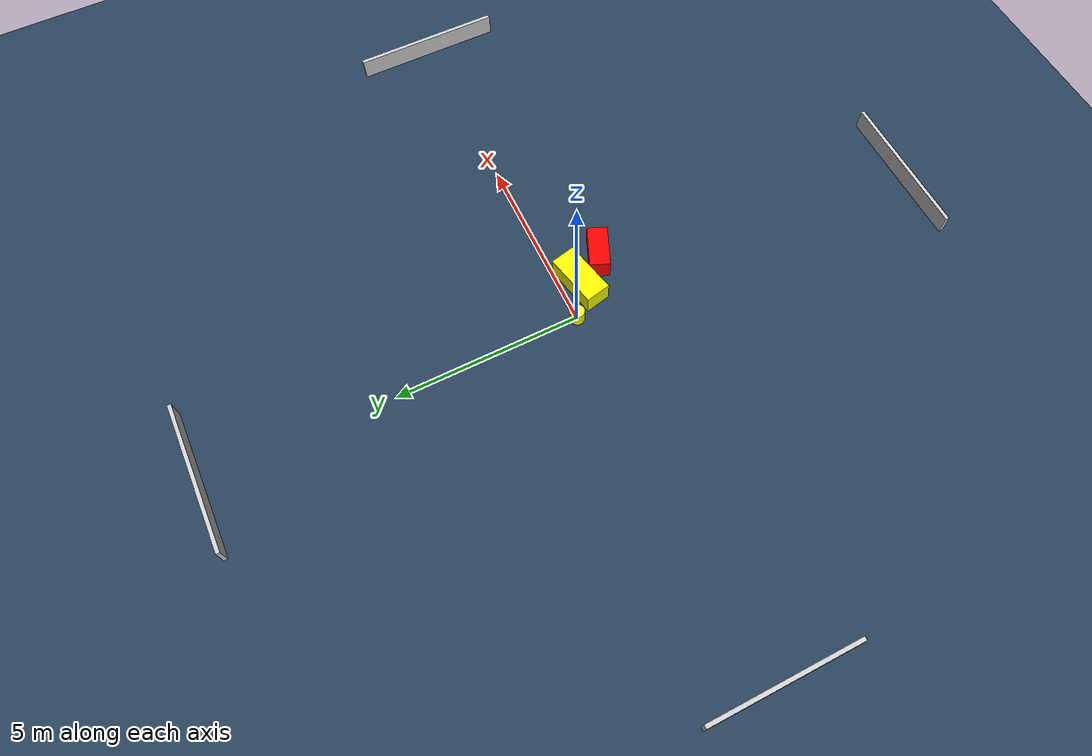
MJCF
<?xml version="1.0" ?>
<mujoco model="generated_environment">
  <option timestep="0.01" integrator="RK4" cone="elliptic"/>
  <default>
    <geom density="1"/>
  </default>
  <asset>
    <texture builtin="gradient" height="3072" name="skybox" rgb1="0.3 0.5 0.7" rgb2="0 0 0" type="skybox" width="512"/>
    <texture builtin="checker" height="300" name="groundplane" rgb1="0.2 0.3 0.4" rgb2="0.1 0.2 0.3" type="2d" width="300"/>
    <material name="groundplane" reflectance="0.2" texrepeat="5 5" texture="groundplane"/>
  </asset>
  <worldbody>
    <light dir="0 0 -1" directional="true" pos="0 0 1.5"/>
    <geom condim="3" friction="0.5 0.005 0.001" material="groundplane" name="floor" pos="0 0 0" size="0 0 0.05" type="plane"/>
    <body name="walls">
      <geom name="wall_1" condim="4" pos="-10.0 0.0 0.3" rgba="0.800000011920929 0.800000011920929 0.800000011920929 1.0" size="0.05 2.0 0.3" type="box"/>
      <geom name="wall_2" condim="4" pos="10.0 0.0 0.3" rgba="0.800000011920929 0.800000011920929 0.800000011920929 1.0" size="0.05 2.0 0.3" type="box"/>
      <geom name="wall_3" condim="4" pos="0.0 -10.0 0.3" rgba="0.800000011920929 0.800000011920929 0.800000011920929 1.0" size="2.0 0.05 0.3" type="box"/>
      <geom name="wall_4" condim="4" pos="0.0 10.0 0.3" rgba="0.800000011920929 0.800000011920929 0.800000011920929 1.0" size="2.0 0.05 0.3" type="box"/>
    </body>
    <body name="robot">
      <joint name="joint_x" type="slide" pos="0 0 0" axis="1 0 0"/>
      <joint name="joint_y" type="slide" pos="0 0 0" axis="0 1 0"/>
      <geom name="robot" type="cylinder" pos="0.0 0.0 0.2" size="0.2 0.2 0.0" mass="5.0" friction="1.0 0.005 0.0001" condim="4" rgba="1.0 1.0 0.0 1.0"/>
    </body>
    <body name="obstacle_1_movable">
      <geom name="obstacle_1_movable" condim="4" pos="0.847447665985201 -0.5117299402575838 0.3" euler="0 0 282.7123503232656" friction="0.0 0.005 0.001" rgba="1.0 1.0 0.0 1.0" size="0.34182625537864714 0.737476578607206 0.3" type="box" mass="0.1"/>
      <joint type="free"/>
    </body>
    <body name="obstacle_2_static">
      <geom name="obstacle_2_static" condim="4" pos="1.381397947716873 -1.309517947464246 0.3" euler="0 0 337.40500394688775" friction="0.0 0.005 0.001" rgba="1.0 0.0 0.0 1.0" size="0.5655065162180145 0.2729218090468375 0.3" type="box"/>
    </body>
  </worldbody>
  <actuator>
    <motor name="actuator_x" joint="joint_x" gear="1" ctrlrange="-1 1"/>
    <motor name="actuator_y" joint="joint_y" gear="1" ctrlrange="-1 1"/>
  </actuator>
</mujoco>
